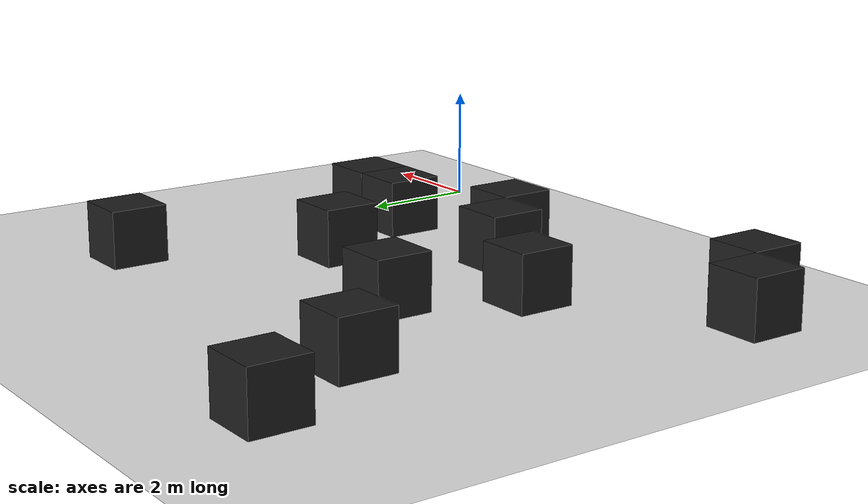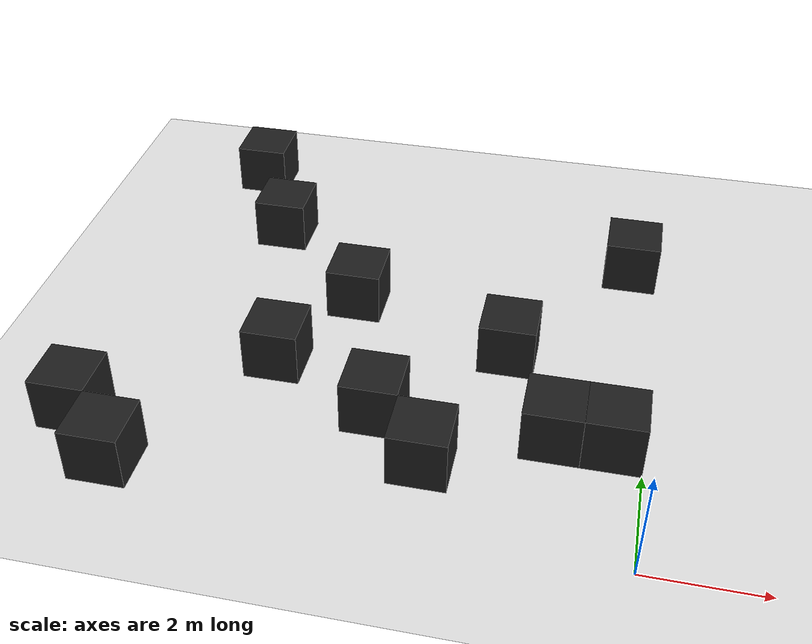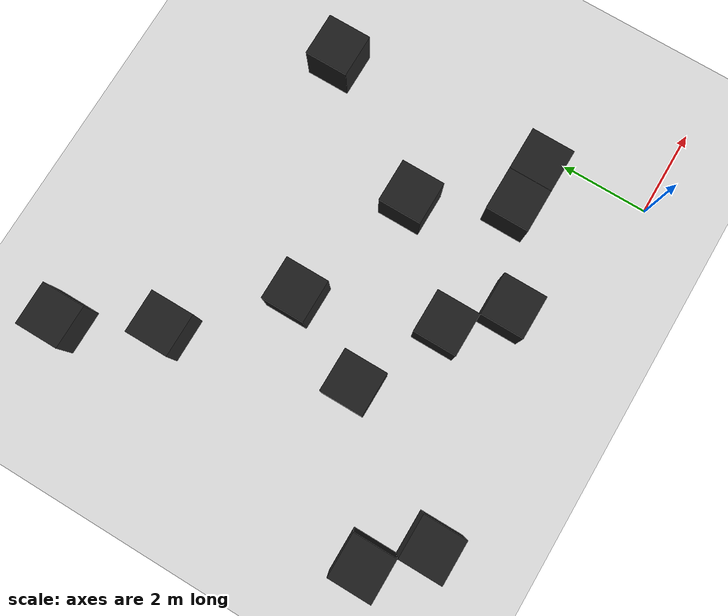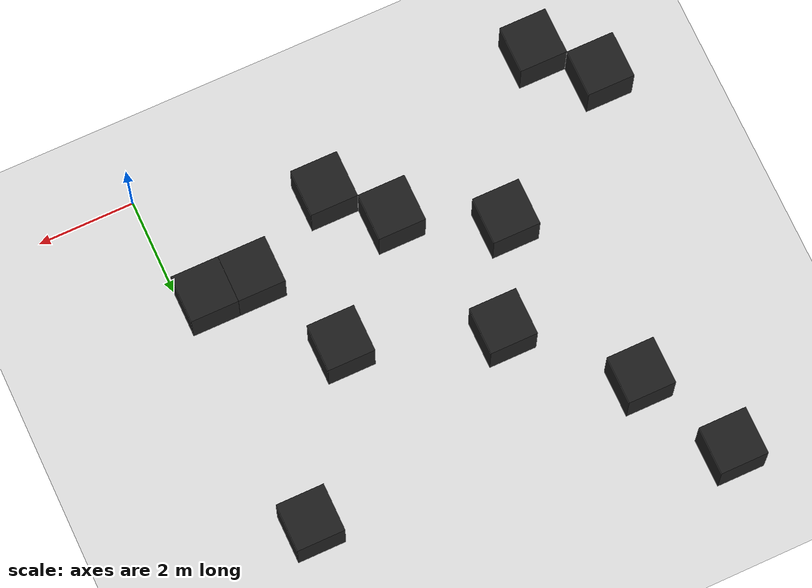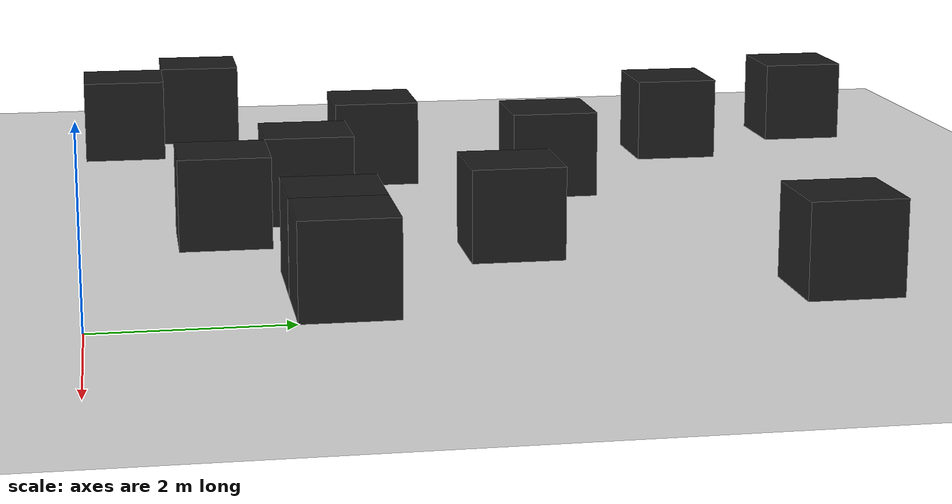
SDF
<sdf version="1.6">
 <world name="default">
  <light name="sun" type="directional">
   <pose>0 0 10 0 -0 0</pose>
   <diffuse>0.8 0.8 0.8 1</diffuse>
   <specular>0.1 0.1 0.1 1</specular>
   <attenuation>
    <range>1000</range>
    <constant>0.9</constant>
    <linear>0.01</linear>
    <quadratic>0.001</quadratic>
   </attenuation>
   <direction>-0.5 0.5 -1</direction>
  </light>
  <model name="ground_plane">
   <static>1</static>
   <link name="link">
    <collision name="collision">
     <geometry><plane><normal>0 0 1</normal><size>100 100</size></plane></geometry>
     <surface><friction><ode><mu>100</mu><mu2>50</mu2></ode></friction></surface>
    </collision>
    <visual name="visual">
     <cast_shadows>0</cast_shadows>
     <geometry><plane><normal>0 0 1</normal><size>100 100</size></plane></geometry>
     <material>
      <script><uri>file://media/materials/scripts/gazebo.material</uri><name>Gazebo/White</name></script>
     </material>
    </visual>
   </link>
  </model>
  <gravity>0 0 -9.8</gravity>
  <magnetic_field>6e-06 2.3e-05 -4.2e-05</magnetic_field>
  <atmosphere type="adiabatic"/>
  <physics name="default_physics" default="0" type="ode">
   <max_step_size>0.001</max_step_size>
   <real_time_factor>1</real_time_factor>
   <real_time_update_rate>1000</real_time_update_rate>
  </physics>
  <scene><ambient>0.4 0.4 0.4 1</ambient><background>0.7 0.7 0.7 1</background><shadows>1</shadows></scene>
  <spherical_coordinates>
   <surface_model>EARTH_WGS84</surface_model>
   <latitude_deg>0</latitude_deg>
   <longitude_deg>0</longitude_deg>
   <elevation>0</elevation>
   <heading_deg>0</heading_deg>
  </spherical_coordinates>
  <model name="unit_box_0">
   <pose>-1.50008 2.50001 0.499995 -0 1e-05 -0.001167</pose>
   <link name="link">
    <inertial>
     <mass>1</mass>
     <inertia>
      <ixx>0.166667</ixx>
      <ixy>0</ixy>
      <ixz>0</ixz>
      <iyy>0.166667</iyy>
      <iyz>0</iyz>
      <izz>0.166667</izz>
     </inertia>
    </inertial>
    <collision name="collision"><geometry><box><size>1 1 1</size></box></geometry></collision>
    <visual name="visual">
     <geometry><box><size>1 1 1</size></box></geometry>
     <material>
      <script><name>Gazebo/Black</name><uri>file://media/materials/scripts/gazebo.material</uri></script>
     </material>
    </visual>
   </link>
  </model>
  <model name="unit_box_4">
   <pose>-3.49803 1.49676 0.499995 -0 1e-05 -0.00048</pose>
   <link name="link">
    <inertial>
     <mass>1</mass>
     <inertia>
      <ixx>0.166667</ixx>
      <ixy>0</ixy>
      <ixz>0</ixz>
      <iyy>0.166667</iyy>
      <iyz>0</iyz>
      <izz>0.166667</izz>
     </inertia>
    </inertial>
    <collision name="collision"><geometry><box><size>1 1 1</size></box></geometry></collision>
    <visual name="visual">
     <geometry><box><size>1 1 1</size></box></geometry>
     <material>
      <script><name>Gazebo/Black</name><uri>file://media/materials/scripts/gazebo.material</uri></script>
     </material>
    </visual>
   </link>
  </model>
  <model name="unit_box_7">
   <pose>-4.50131 2.49511 0.499995 0 1e-05 0.000185</pose>
   <link name="link">
    <inertial>
     <mass>1</mass>
     <inertia>
      <ixx>0.166667</ixx>
      <ixy>0</ixy>
      <ixz>0</ixz>
      <iyy>0.166667</iyy>
      <iyz>0</iyz>
      <izz>0.166667</izz>
     </inertia>
    </inertial>
    <collision name="collision"><geometry><box><size>1 1 1</size></box></geometry></collision>
    <visual name="visual">
     <geometry><box><size>1 1 1</size></box></geometry>
     <material>
      <script><name>Gazebo/Black</name><uri>file://media/materials/scripts/gazebo.material</uri></script>
     </material>
    </visual>
   </link>
  </model>
  <model name="unit_box_11">
   <pose>-5.5 5.50002 0.499995 -0 1e-05 -8e-05</pose>
   <link name="link">
    <inertial>
     <mass>1</mass>
     <inertia>
      <ixx>0.166667</ixx>
      <ixy>0</ixy>
      <ixz>0</ixz>
      <iyy>0.166667</iyy>
      <iyz>0</iyz>
      <izz>0.166667</izz>
     </inertia>
    </inertial>
    <collision name="collision"><geometry><box><size>1 1 1</size></box></geometry></collision>
    <visual name="visual">
     <geometry><box><size>1 1 1</size></box></geometry>
     <material>
      <script><name>Gazebo/Black</name><uri>file://media/materials/scripts/gazebo.material</uri></script>
     </material>
    </visual>
   </link>
  </model>
  <model name="unit_box_12">
   <pose>-6.5 3.5 0.499995 1e-05 0 -0.000114</pose>
   <link name="link">
    <inertial>
     <mass>1</mass>
     <inertia>
      <ixx>0.166667</ixx>
      <ixy>0</ixy>
      <ixz>0</ixz>
      <iyy>0.166667</iyy>
      <iyz>0</iyz>
      <izz>0.166667</izz>
     </inertia>
    </inertial>
    <collision name="collision"><geometry><box><size>1 1 1</size></box></geometry></collision>
    <visual name="visual">
     <geometry><box><size>1 1 1</size></box></geometry>
     <material>
      <script><name>Gazebo/Black</name><uri>file://media/materials/scripts/gazebo.material</uri></script>
     </material>
    </visual>
   </link>
  </model>
  <model name="unit_box_15">
   <pose>-0.5 7.5 0.499995 1e-05 -0 0.00061</pose>
   <link name="link">
    <inertial>
     <mass>1</mass>
     <inertia>
      <ixx>0.166667</ixx>
      <ixy>0</ixy>
      <ixz>0</ixz>
      <iyy>0.166667</iyy>
      <iyz>0</iyz>
      <izz>0.166667</izz>
     </inertia>
    </inertial>
    <collision name="collision"><geometry><box><size>1 1 1</size></box></geometry></collision>
    <visual name="visual">
     <geometry><box><size>1 1 1</size></box></geometry>
     <material>
      <script><name>Gazebo/Black</name><uri>file://media/materials/scripts/gazebo.material</uri></script>
     </material>
    </visual>
   </link>
  </model>
  <model name="unit_box_16">
   <pose>-2.50022 4.49962 0.499995 -1e-05 0 0.000365</pose>
   <link name="link">
    <inertial>
     <mass>1</mass>
     <inertia>
      <ixx>0.166667</ixx>
      <ixy>0</ixy>
      <ixz>0</ixz>
      <iyy>0.166667</iyy>
      <iyz>0</iyz>
      <izz>0.166667</izz>
     </inertia>
    </inertial>
    <collision name="collision"><geometry><box><size>1 1 1</size></box></geometry></collision>
    <visual name="visual">
     <geometry><box><size>1 1 1</size></box></geometry>
     <material>
      <script><name>Gazebo/Black</name><uri>file://media/materials/scripts/gazebo.material</uri></script>
     </material>
    </visual>
   </link>
  </model>
  <model name="unit_box_18">
   <pose>-7.5 7.5 0.499995 0 1e-05 0</pose>
   <link name="link">
    <inertial>
     <mass>1</mass>
     <inertia>
      <ixx>0.166667</ixx>
      <ixy>0</ixy>
      <ixz>0</ixz>
      <iyy>0.166667</iyy>
      <iyz>0</iyz>
      <izz>0.166667</izz>
     </inertia>
    </inertial>
    <collision name="collision"><geometry><box><size>1 1 1</size></box></geometry></collision>
    <visual name="visual">
     <geometry><box><size>1 1 1</size></box></geometry>
     <material>
      <script><name>Gazebo/Black</name><uri>file://media/materials/scripts/gazebo.material</uri></script>
     </material>
    </visual>
   </link>
  </model>
  <model name="unit_box_19">
   <pose>-8.49639 0.5 0.5 0 -0 0</pose>
   <link name="link">
    <inertial>
     <mass>1</mass>
     <inertia>
      <ixx>0.166667</ixx>
      <ixy>0</ixy>
      <ixz>0</ixz>
      <iyy>0.166667</iyy>
      <iyz>0</iyz>
      <izz>0.166667</izz>
     </inertia>
    </inertial>
    <collision name="collision"><geometry><box><size>1 1 1</size></box></geometry></collision>
    <visual name="visual">
     <geometry><box><size>1 1 1</size></box></geometry>
     <material>
      <script><name>Gazebo/Black</name><uri>file://media/materials/scripts/gazebo.material</uri></script>
     </material>
    </visual>
   </link>
  </model>
  <model name="unit_box_20">
   <pose>-9.49681 1.50365 0.499995 0 1e-05 0</pose>
   <link name="link">
    <inertial>
     <mass>1</mass>
     <inertia>
      <ixx>0.166667</ixx>
      <ixy>0</ixy>
      <ixz>0</ixz>
      <iyy>0.166667</iyy>
      <iyz>0</iyz>
      <izz>0.166667</izz>
     </inertia>
    </inertial>
    <collision name="collision"><geometry><box><size>1 1 1</size></box></geometry></collision>
    <visual name="visual">
     <geometry><box><size>1 1 1</size></box></geometry>
     <material>
      <script><name>Gazebo/Black</name><uri>file://media/materials/scripts/gazebo.material</uri></script>
     </material>
    </visual>
   </link>
  </model>
  <model name="unit_box_21">
   <pose>-8.5 9.5 0.499995 1e-05 -0 2e-06</pose>
   <link name="link">
    <inertial>
     <mass>1</mass>
     <inertia>
      <ixx>0.166667</ixx>
      <ixy>0</ixy>
      <ixz>0</ixz>
      <iyy>0.166667</iyy>
      <iyz>0</iyz>
      <izz>0.166667</izz>
     </inertia>
    </inertial>
    <collision name="collision"><geometry><box><size>1 1 1</size></box></geometry></collision>
    <visual name="visual">
     <geometry><box><size>1 1 1</size></box></geometry>
     <material>
      <script><name>Gazebo/Black</name><uri>file://media/materials/scripts/gazebo.material</uri></script>
     </material>
    </visual>
   </link>
  </model>
  <model name="unit_box_23">
   <pose>-0.499657 2.50021 0.499995 0 -1e-05 -0.000327</pose>
   <link name="link">
    <inertial>
     <mass>1</mass>
     <inertia>
      <ixx>0.166667</ixx>
      <ixy>0</ixy>
      <ixz>0</ixz>
      <iyy>0.166667</iyy>
      <iyz>0</iyz>
      <izz>0.166667</izz>
     </inertia>
    </inertial>
    <collision name="collision"><geometry><box><size>1 1 1</size></box></geometry></collision>
    <visual name="visual">
     <geometry><box><size>1 1 1</size></box></geometry>
     <material>
      <script><name>Gazebo/Black</name><uri>file://media/materials/scripts/gazebo.material</uri></script>
     </material>
    </visual>
   </link>
  </model>
 </world>
</sdf>
